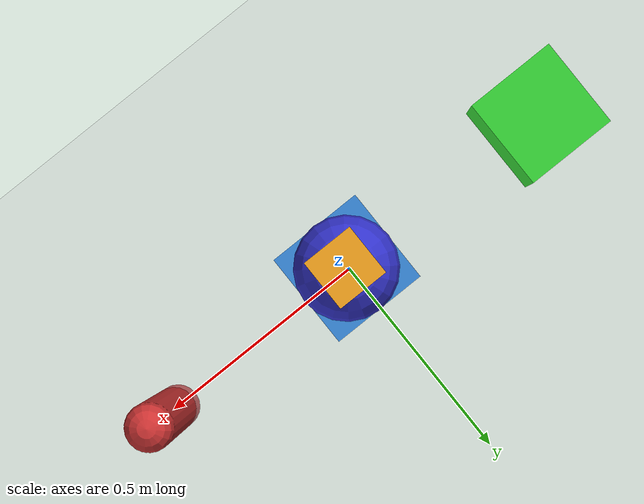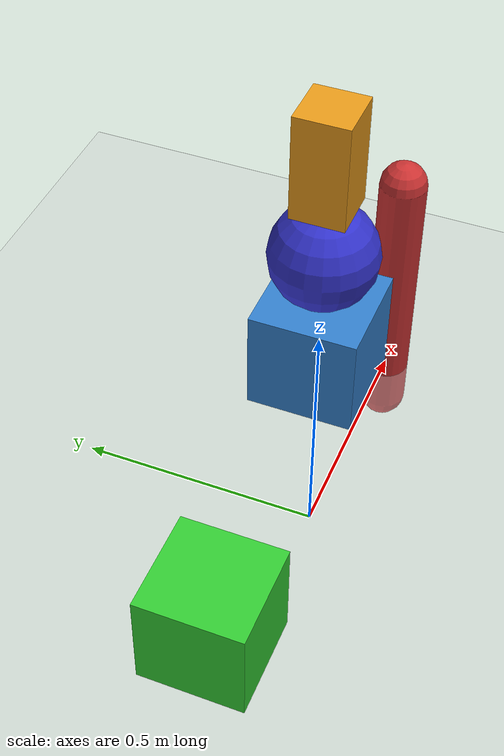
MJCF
<mujoco model="mjcf_demo">
  <compiler angle="degree"/>

  <option timestep="0.002" gravity="0 0 -9.81"/>

  <worldbody>
    <!-- 地面 -->
    <geom name="floor"
          type="plane"
          size="2 2 0.1"
          rgba="0.8 0.8 0.8 1"/>

    <!-- 自由盒子 -->
    <body name="free_box" pos="0 0 0.5">
      <freejoint/>
      <geom name="box_geom" type="box" size="0.1 0.1 0.1" mass="1"
            rgba="0.2 0.5 0.8 1"/>
    </body>

    <!-- 旋转杆 -->
    <body name="hinge_rod" pos="0.5 0 0.2">
      <joint name="rod_hinge" type="hinge" axis="0 1 0"/>
      <geom name="rod_geom" type="capsule" size="0.05 0.3" mass="0.5"
            rgba="0.8 0.2 0.2 1"/>
    </body>

    <!-- 滑动块 -->
    <body name="slide_block" pos="-0.5 0 0.3">
      <joint name="block_slide" type="slide" axis="1 0 0"/>
      <geom name="block_geom" type="box" size="0.1 0.1 0.1" mass="0.8"
            rgba="0.2 0.8 0.2 1"/>
    </body>

    <!-- 父子嵌套示例 -->
    <body name="parent_body" pos="0 0 0.7">
      <joint name="parent_free" type="free"/>
      <geom name="parent_geom" type="sphere" size="0.1" mass="0.5"
            rgba="0.2 0.2 0.8 1"/>

      <body name="child_body" pos="0 0 0.2">
        <joint name="child_hinge" type="hinge" axis="0 0 1"/>
        <geom name="child_geom" type="box" size="0.05 0.05 0.1" mass="0.2"
              rgba="0.9 0.6 0.1 1"/>
      </body>
    </body>

  </worldbody>
  <actuator>
    <motor joint="rod_hinge" ctrlrange="-5 5" gear="1"/>
  </actuator>
</mujoco>
